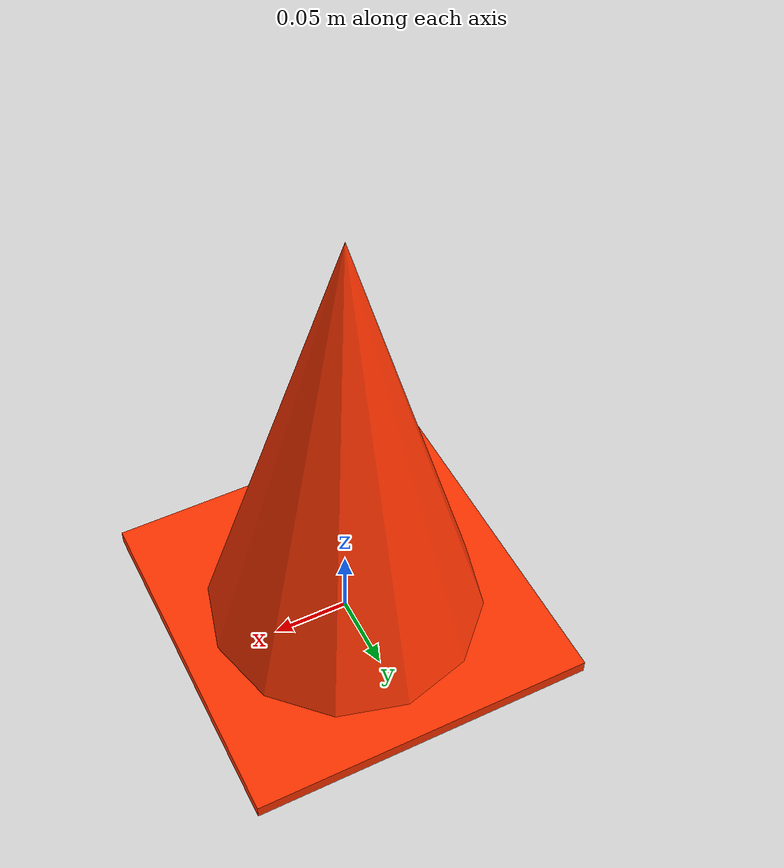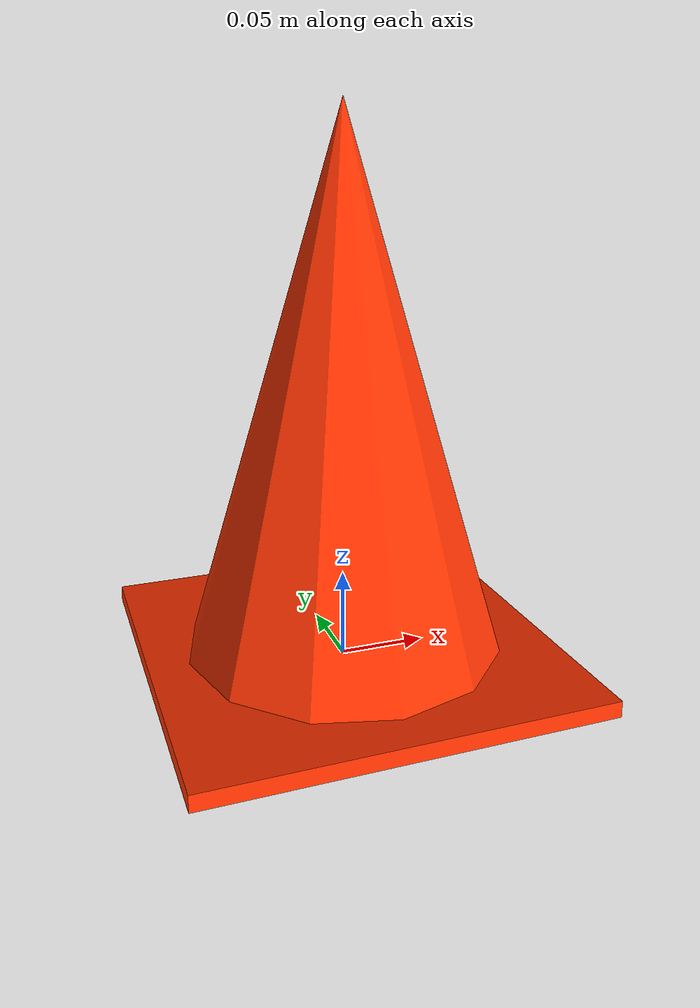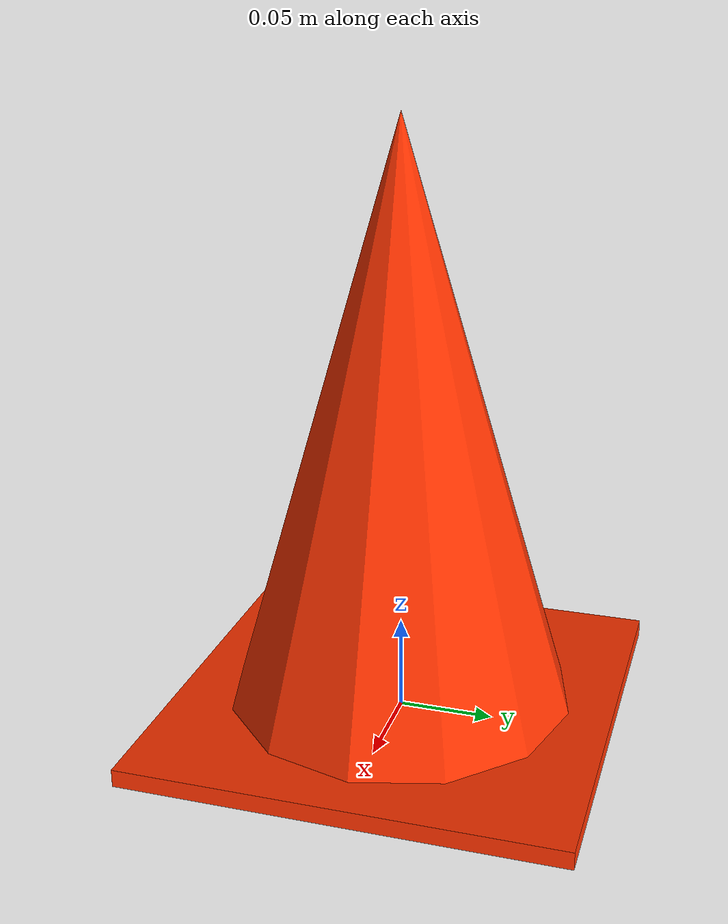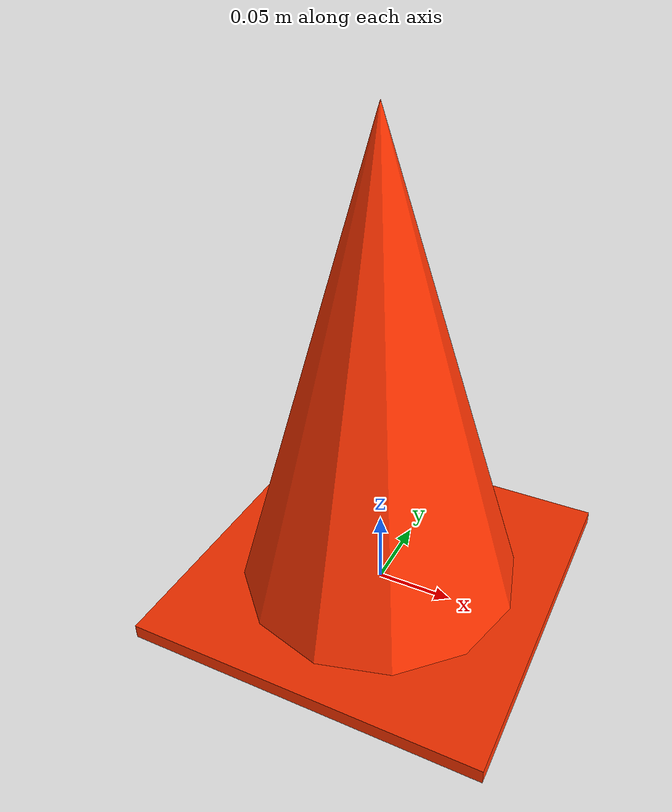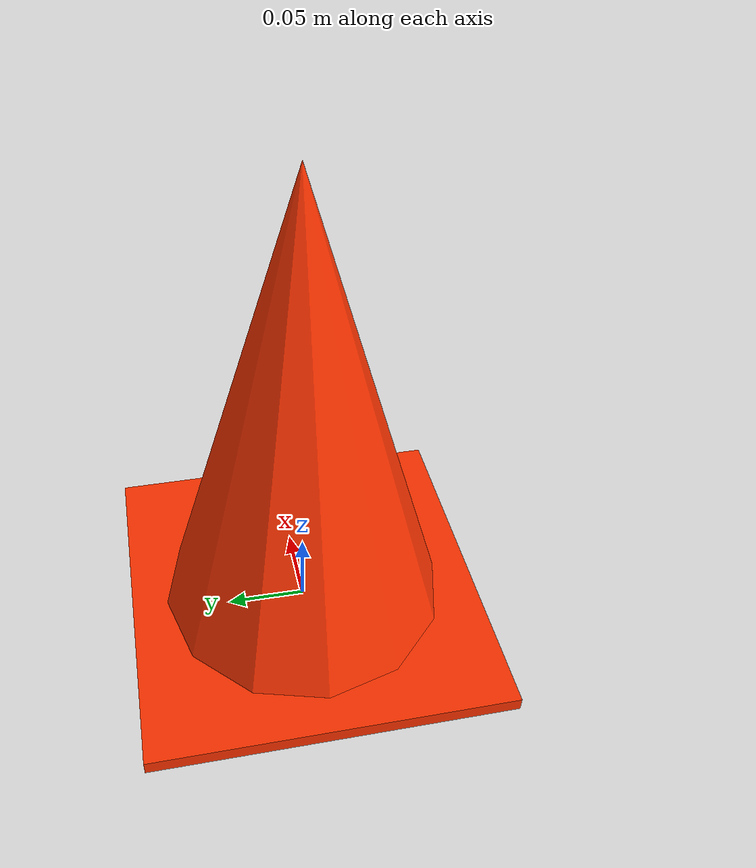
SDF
<?xml version='1.0'?>
<sdf version='1.4'>
  <model name="Cone">
    <link name="link">
      <collision name="collision">
        <geometry>
          <mesh>
            <uri>model://racecar_description/meshes/cone.dae</uri>
          </mesh>
        </geometry>
      </collision>
      <visual name="visual">
        <geometry>
          <mesh>
            <uri>model://racecar_description/meshes/cone.dae</uri>
          </mesh>
        </geometry>
        <material>
          <ambient>1 0.2 0 1</ambient>
          <diffuse>1 0.2 0 1</diffuse>
          <specular>0.1 0.1 0.1 1</specular>
          <emissive>0 0 0 0</emissive>
        </material>
      </visual>
    </link>
  </model>
</sdf>
